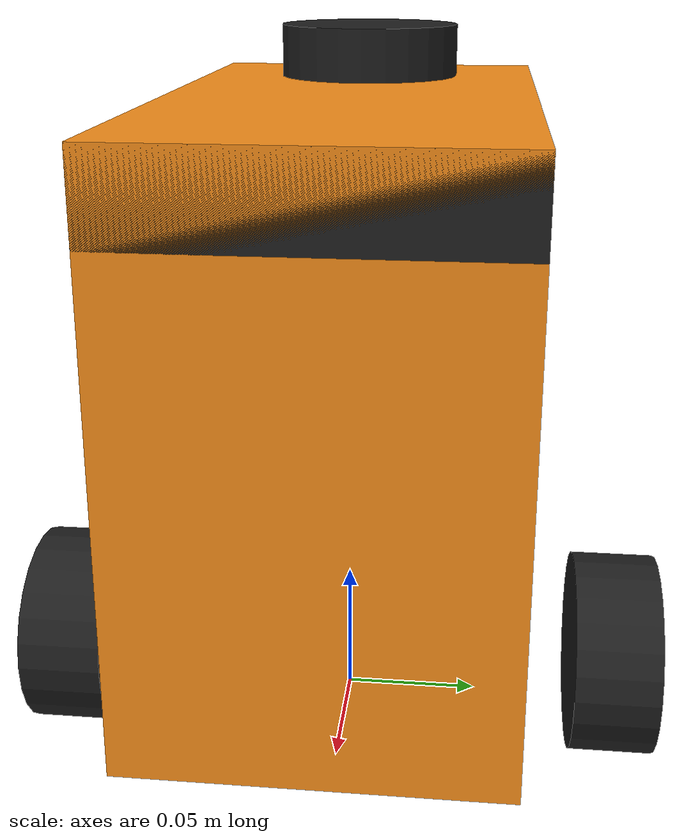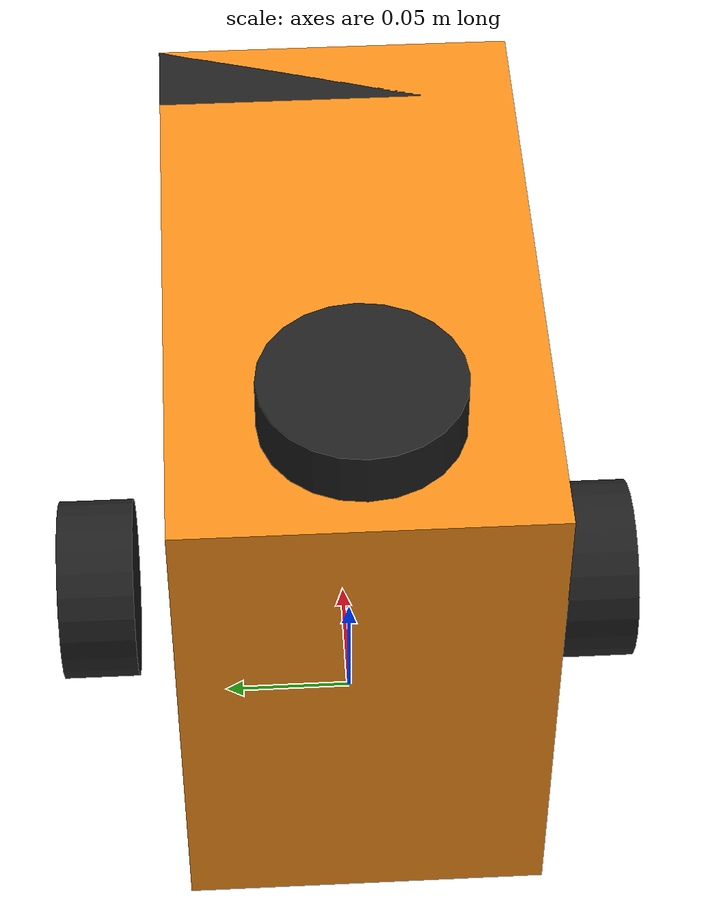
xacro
<?xml version="1.0"?>
<robot xmlns:xacro="http://www.ros.org/wiki/xacro" name="diffdrive_robot">
  <xacro:arg name="prefix" default="" />
  <xacro:arg name="use_mock_hardware" default="false" />

  <xacro:include filename="$(find diffbot)/urdf/diffbot_description.urdf.xacro" />

  <xacro:include filename="$(find diffbot)/urdf/diffbot.materials.xacro" />

  <xacro:include filename="$(find diffbot)/ros2_control/diffbot.ros2_control.xacro" />

  <xacro:diffbot prefix="$(arg prefix)" />

  <xacro:diffbot_ros2_control
    name="DiffBot" prefix="$(arg prefix)" use_mock_hardware="$(arg use_mock_hardware)"/>

</robot>

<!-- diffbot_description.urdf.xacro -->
<robot xmlns:xacro="http://www.ros.org/wiki/xacro">

  <xacro:macro name="diffbot" params="prefix">

    <xacro:property name="PI" value="3.1415926535897931"/>
    <xacro:property name="base_mass" value="3.4"/>
    <xacro:property name="base_width" value="0.24"/>
    <xacro:property name="base_length" value="0.13"/>
    <xacro:property name="base_length_collision" value="0.23"/>
    <xacro:property name="base_height" value="0.2"/>
    <xacro:property name="wheel_x_offset" value="0.0265"/>
    <xacro:property name="wheel_z_offset" value="0.1"/>
    <xacro:property name="wheel_separation" value="0.2"/>
    <xacro:property name="wheel_mass" value="0.3"/>
    <xacro:property name="wheel_len" value="0.030"/>
    <xacro:property name="wheel_radius" value="0.036"/>
    <xacro:property name="z_offset" value="-${base_height/2}"/>

    <link name="base_footprint">
      <visual>
        <origin xyz="0 0 0" rpy="0 0 0"/>
        <geometry>
          <box size="0.01 0.01 0.005"/>
        </geometry>
        <material name="green"/>
      </visual>
    </link>

    <link name="${prefix}base_link">
      <visual>
        <origin xyz="0 0 0" rpy="0 0 0"/>
        <geometry>
          <box size="0.01 0.01 0.005"/>
        </geometry>
        <material name="blue"/>
      </visual>

      <inertial>
        <origin xyz="0 0 0" rpy="0 0 0"/>
        <mass value="${base_mass}"/>
        <inertia
          ixx="${base_mass / 12.0 * (base_length*base_length + base_height*base_height)}" ixy="0.0" ixz="0.0"
          iyy="${base_mass / 12.0 * (base_height*base_height + base_width*base_width)}" iyz="0.0"
          izz="${base_mass / 12.0 * (base_width*base_width + base_length*base_length)}"/>
      </inertial>

      <visual>
        <origin xyz="0 0 0" rpy="0 0 0"/>
        <geometry>
          <box size="${base_width} ${base_length} ${base_height}"/>
        </geometry>
        <material name="orange"/>
      </visual>

      <collision>
        <origin xyz="0 0 0" rpy="0 0 0"/>
        <geometry>
          <box size="${base_width} ${base_length_collision} ${base_height}"/>
        </geometry>
      </collision>
    </link>

    <joint name="base_footprint_joint" type="fixed">
      <parent link="base_footprint"/>
      <child link="base_link"/>
      <origin xyz="0 0 ${base_height / 2 + wheel_radius}" rpy="0 0 0"/>
    </joint>

    <joint name="${prefix}left_wheel_joint" type="continuous">
      <parent link="${prefix}base_link"/>
      <child link="${prefix}left_wheel"/>
      <origin xyz="${wheel_x_offset} -${wheel_separation/2} -${wheel_z_offset}" rpy="0 0 0"/>
      <axis xyz="0 1 0"/>
      <dynamics damping="0.2"/>
      <limit effort="100" velocity="1.0"/>
    </joint>

    <link name="${prefix}left_wheel">
      <collision>
        <origin xyz="0 0 0" rpy="${PI/2} 0 0"/>
        <geometry>
          <cylinder length="${wheel_len}" radius="${wheel_radius}"/>
        </geometry>
      </collision>

      <visual>
        <origin xyz="0 0 0" rpy="${PI/2} 0 0"/>
        <geometry>
          <cylinder length="${wheel_len}" radius="${wheel_radius}"/>
        </geometry>
        <material name="black"/>
      </visual>

      <inertial>
        <origin xyz="0 0 0" rpy="${PI/2} 0 0"/>
        <mass value="${wheel_mass}"/>
        <inertia
          ixx="${wheel_mass / 12.0 * (3*wheel_radius*wheel_radius + wheel_len*wheel_len)}" ixy="0.0" ixz="0.0"
          iyy="${wheel_mass / 12.0 * (3*wheel_radius*wheel_radius + wheel_len*wheel_len)}" iyz="0.0"
          izz="${wheel_mass / 2.0 * wheel_radius*wheel_radius}"/>
      </inertial>
    </link>

    <joint name="${prefix}right_wheel_joint" type="continuous">
      <parent link="${prefix}base_link"/>
      <child link="${prefix}right_wheel"/>
      <origin xyz="${wheel_x_offset} ${wheel_separation/2} -${wheel_z_offset}" rpy="0 0 0"/>
      <axis xyz="0 1 0"/>
      <dynamics damping="0.2"/>
      <limit effort="100" velocity="1.0"/>
    </joint>

    <link name="${prefix}right_wheel">
      <collision>
        <origin xyz="0 0 0" rpy="${PI/2} 0 0"/>
        <geometry>
          <cylinder length="${wheel_len}" radius="${wheel_radius}"/>
        </geometry>
      </collision>

      <visual>
        <origin xyz="0 0 0" rpy="${PI/2} 0 0"/>
        <geometry>
          <cylinder length="${wheel_len}" radius="${wheel_radius}"/>
        </geometry>
        <material name="black"/>
      </visual>

      <inertial>
        <origin xyz="0 0 0" rpy="${PI/2} 0 0"/>
        <mass value="${wheel_mass}"/>
        <inertia
          ixx="${wheel_mass / 12.0 * (3*wheel_radius*wheel_radius + wheel_len*wheel_len)}" ixy="0.0" ixz="0.0"
          iyy="${wheel_mass / 12.0 * (3*wheel_radius*wheel_radius + wheel_len*wheel_len)}" iyz="0.0"
          izz="${wheel_mass / 2.0 * wheel_radius*wheel_radius}"/>
      </inertial>
    </link>

    <link name="scan">
      <visual>
        <geometry>
          <cylinder radius="0.035" length="0.02"/>
        </geometry>
        <origin xyz="0 0 0" rpy="0 0 0"/>
        <material name="black"/>
      </visual>
    </link>

    <joint name="laser_joint" type="fixed">
      <parent link="base_link"/>
      <child link="scan"/>
      <origin xyz="-0.0725 0 0.11" rpy="0 0 0"/>
    </joint>

    <link name="camera_link">
      <visual>
        <origin xyz="0 0 0" rpy="0 0 0"/>
        <geometry>
          <box size="0.03 ${base_length} 0.03"/>
        </geometry>
        <material name="black"/>
      </visual>
    </link>

    <joint name="camera_joint" type="fixed">
      <parent link="base_link"/>
      <child link="camera_link"/>
      <origin xyz="0.105 0 0.085" rpy="0 0 0"/>
    </joint>

    <link name="imu_link">
      <visual>
        <origin xyz="0 0 0" rpy="0 0 0"/>
        <geometry>
          <box size="0.01 0.01 0.005"/>
        </geometry>
        <material name="red"/>
      </visual>
    </link>

    <joint name="imu_joint" type="fixed">
      <parent link="base_link"/>
      <child link="imu_link"/>
      <origin xyz="0 0 -0.005" rpy="0 0 -${PI/2}"/>
    </joint>

  </xacro:macro>

</robot>
